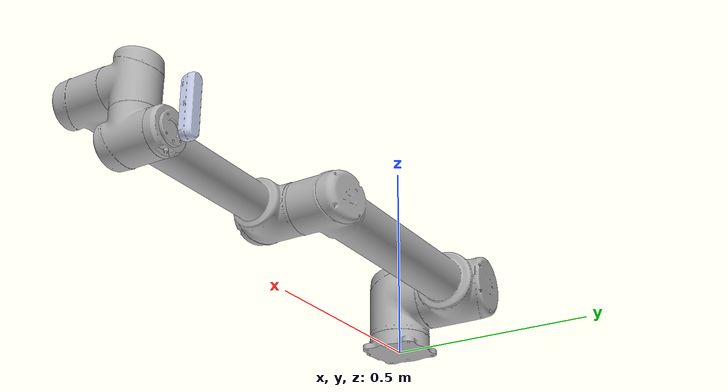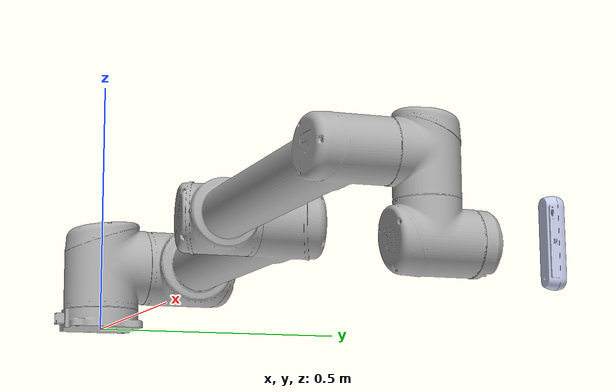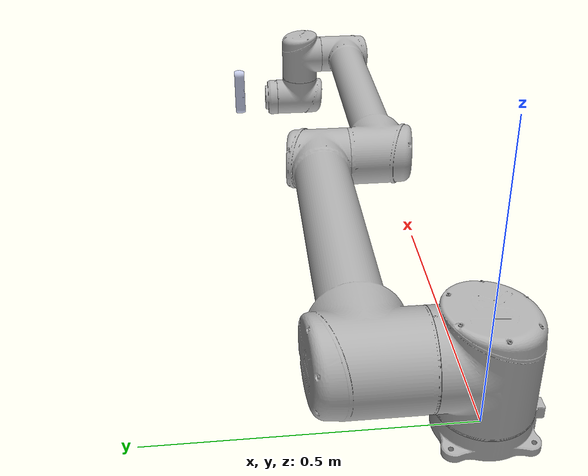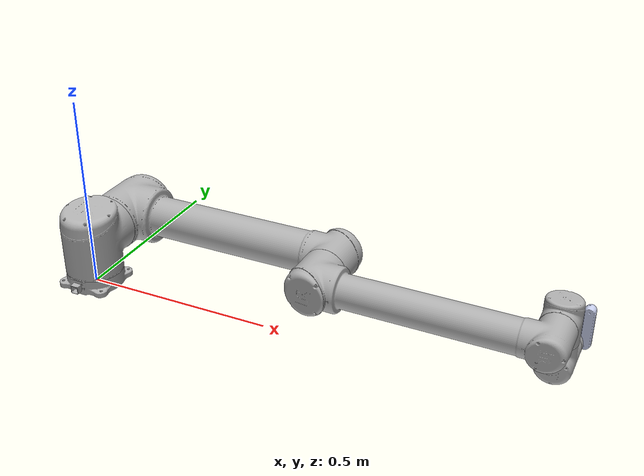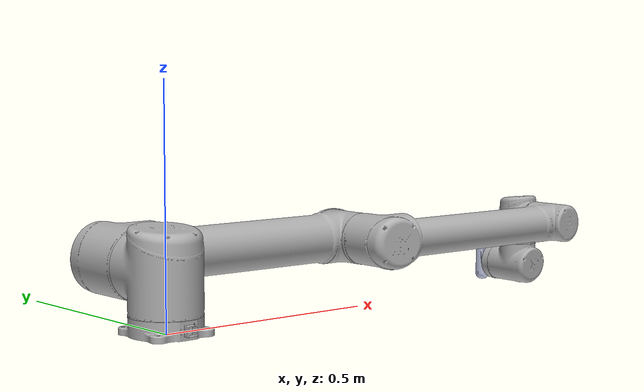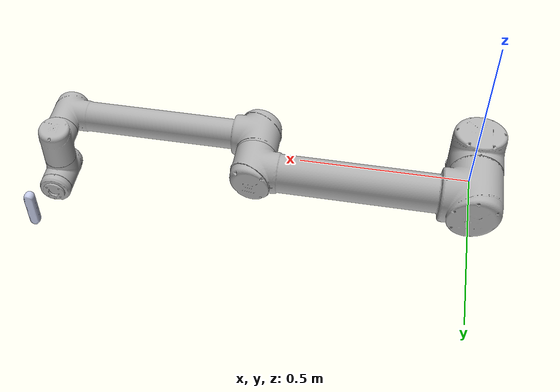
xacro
<?xml version="1.0" ?>
<robot name="ur10_robot">
  <transmission name="shoulder_pan_trans">
    <type>transmission_interface/SimpleTransmission</type>
    <joint name="shoulder_pan_joint">
      <hardwareInterface>hardware_interface/PositionJointInterface</hardwareInterface>
    </joint>
    <actuator name="shoulder_pan_motor">
      <mechanicalReduction>1</mechanicalReduction>
    </actuator>
  </transmission>
  <transmission name="shoulder_lift_trans">
    <type>transmission_interface/SimpleTransmission</type>
    <joint name="shoulder_lift_joint">
      <hardwareInterface>hardware_interface/PositionJointInterface</hardwareInterface>
    </joint>
    <actuator name="shoulder_lift_motor">
      <mechanicalReduction>1</mechanicalReduction>
    </actuator>
  </transmission>
  <transmission name="elbow_trans">
    <type>transmission_interface/SimpleTransmission</type>
    <joint name="elbow_joint">
      <hardwareInterface>hardware_interface/PositionJointInterface</hardwareInterface>
    </joint>
    <actuator name="elbow_motor">
      <mechanicalReduction>1</mechanicalReduction>
    </actuator>
  </transmission>
  <transmission name="wrist_1_trans">
    <type>transmission_interface/SimpleTransmission</type>
    <joint name="wrist_1_joint">
      <hardwareInterface>hardware_interface/PositionJointInterface</hardwareInterface>
    </joint>
    <actuator name="wrist_1_motor">
      <mechanicalReduction>1</mechanicalReduction>
    </actuator>
  </transmission>
  <transmission name="wrist_2_trans">
    <type>transmission_interface/SimpleTransmission</type>
    <joint name="wrist_2_joint">
      <hardwareInterface>hardware_interface/PositionJointInterface</hardwareInterface>
    </joint>
    <actuator name="wrist_2_motor">
      <mechanicalReduction>1</mechanicalReduction>
    </actuator>
  </transmission>
  <transmission name="wrist_3_trans">
    <type>transmission_interface/SimpleTransmission</type>
    <joint name="wrist_3_joint">
      <hardwareInterface>hardware_interface/PositionJointInterface</hardwareInterface>
    </joint>
    <actuator name="wrist_3_motor">
      <mechanicalReduction>1</mechanicalReduction>
    </actuator>
  </transmission>
  <!-- links: main serial chain -->
  <link name="base_link"/>
  <link name="base_link_inertia">
    <visual>
      <origin rpy="0 0 3.141592653589793" xyz="0 0 0"/>
      <geometry>
        <mesh filename="package://ur_description/meshes/ur10/visual/base.dae"/>
      </geometry>
      <material name="LightGrey">
        <color rgba="0.7 0.7 0.7 1.0"/>
      </material>
    </visual>
    <collision>
      <origin rpy="0 0 3.141592653589793" xyz="0 0 0"/>
      <geometry>
        <mesh filename="package://ur_description/meshes/ur10/collision/base.stl"/>
      </geometry>
    </collision>
    <inertial>
      <mass value="4.0"/>
      <origin rpy="0 0 0" xyz="0 0 0"/>
      <inertia ixx="0.0061063308908" ixy="0.0" ixz="0.0" iyy="0.0061063308908" iyz="0.0" izz="0.01125"/>
    </inertial>
  </link>
  <link name="shoulder_link">
    <visual>
      <origin rpy="0 0 3.141592653589793" xyz="0 0 0"/>
      <geometry>
        <mesh filename="package://ur_description/meshes/ur10/visual/shoulder.dae"/>
      </geometry>
      <material name="LightGrey">
        <color rgba="0.7 0.7 0.7 1.0"/>
      </material>
    </visual>
    <collision>
      <origin rpy="0 0 3.141592653589793" xyz="0 0 0"/>
      <geometry>
        <mesh filename="package://ur_description/meshes/ur10/collision/shoulder.stl"/>
      </geometry>
    </collision>
    <inertial>
      <mass value="7.778"/>
      <origin rpy="0 0 0" xyz="0 0 0"/>
      <inertia ixx="0.03147431257693659" ixy="0.0" ixz="0.0" iyy="0.03147431257693659" iyz="0.0" izz="0.021875624999999996"/>
    </inertial>
  </link>
  <link name="upper_arm_link">
    <visual>
      <origin rpy="1.5707963267948966 0 -1.5707963267948966" xyz="0 0 0.220941"/>
      <geometry>
        <mesh filename="package://ur_description/meshes/ur10/visual/upperarm.dae"/>
      </geometry>
      <material name="LightGrey">
        <color rgba="0.7 0.7 0.7 1.0"/>
      </material>
    </visual>
    <collision>
      <origin rpy="1.5707963267948966 0 -1.5707963267948966" xyz="0 0 0.220941"/>
      <geometry>
        <mesh filename="package://ur_description/meshes/ur10/collision/upperarm.stl"/>
      </geometry>
    </collision>
    <inertial>
      <mass value="12.93"/>
      <origin rpy="0 1.5707963267948966 0" xyz="-0.306 0.0 0.175"/>
      <inertia ixx="0.42175380379841093" ixy="0.0" ixz="0.0" iyy="0.42175380379841093" iyz="0.0" izz="0.03636562499999999"/>
    </inertial>
  </link>
  <link name="forearm_link">
    <visual>
      <origin rpy="1.5707963267948966 0 -1.5707963267948966" xyz="0 0 0.049042"/>
      <geometry>
        <mesh filename="package://ur_description/meshes/ur10/visual/forearm.dae"/>
      </geometry>
      <material name="LightGrey">
        <color rgba="0.7 0.7 0.7 1.0"/>
      </material>
    </visual>
    <collision>
      <origin rpy="1.5707963267948966 0 -1.5707963267948966" xyz="0 0 0.049042"/>
      <geometry>
        <mesh filename="package://ur_description/meshes/ur10/collision/forearm.stl"/>
      </geometry>
    </collision>
    <inertial>
      <mass value="3.87"/>
      <origin rpy="0 1.5707963267948966 0" xyz="-0.28615 0.0 0.049042"/>
      <inertia ixx="0.11106969409710458" ixy="0.0" ixz="0.0" iyy="0.11106969409710458" iyz="0.0" izz="0.010884375"/>
    </inertial>
  </link>
  <link name="wrist_1_link">
    <visual>
      <!-- TODO: Move this to a parameter -->
      <origin rpy="1.5707963267948966 0 0" xyz="0 0 -0.1149"/>
      <geometry>
        <mesh filename="package://ur_description/meshes/ur10/visual/wrist1.dae"/>
      </geometry>
      <material name="LightGrey">
        <color rgba="0.7 0.7 0.7 1.0"/>
      </material>
    </visual>
    <collision>
      <origin rpy="1.5707963267948966 0 0" xyz="0 0 -0.1149"/>
      <geometry>
        <mesh filename="package://ur_description/meshes/ur10/collision/wrist1.stl"/>
      </geometry>
    </collision>
    <inertial>
      <mass value="1.96"/>
      <origin rpy="0 0 0" xyz="0 0 0"/>
      <inertia ixx="0.005108247956699999" ixy="0.0" ixz="0.0" iyy="0.005108247956699999" iyz="0.0" izz="0.005512499999999999"/>
    </inertial>
  </link>
  <link name="wrist_2_link">
    <visual>
      <origin rpy="0 0 0" xyz="0 0 -0.1158"/>
      <geometry>
        <mesh filename="package://ur_description/meshes/ur10/visual/wrist2.dae"/>
      </geometry>
      <material name="LightGrey">
        <color rgba="0.7 0.7 0.7 1.0"/>
      </material>
    </visual>
    <collision>
      <origin rpy="0 0 0" xyz="0 0 -0.1158"/>
      <geometry>
        <mesh filename="package://ur_description/meshes/ur10/collision/wrist2.stl"/>
      </geometry>
    </collision>
    <inertial>
      <mass value="1.96"/>
      <origin rpy="0 0 0" xyz="0 0 0"/>
      <inertia ixx="0.0040792483683" ixy="0.0" ixz="0.0" iyy="0.0040792483683" iyz="0.0" izz="0.005512499999999999"/>
    </inertial>
  </link>
  <link name="wrist_3_link">
    <visual>
      <origin rpy="1.5707963267948966 0 0" xyz="0 0 -0.0922"/>
      <geometry>
        <mesh filename="package://ur_description/meshes/ur10/visual/wrist3.dae"/>
      </geometry>
      <material name="LightGrey">
        <color rgba="0.7 0.7 0.7 1.0"/>
      </material>
    </visual>
    <collision>
      <origin rpy="1.5707963267948966 0 0" xyz="0 0 -0.0922"/>
      <geometry>
        <mesh filename="package://ur_description/meshes/ur10/collision/wrist3.stl"/>
      </geometry>
    </collision>
    <inertial>
      <mass value="0.202"/>
      <origin rpy="0 0 0" xyz="0.0 0.0 -0.01525"/>
      <inertia ixx="0.00011792166116465" ixy="0.0" ixz="0.0" iyy="0.00011792166116465" iyz="0.0" izz="0.00020452500000000002"/>
    </inertial>
  </link>
  <!-- joints: main serial chain -->
  <joint name="base_link-base_link_inertia" type="fixed">
    <parent link="base_link"/>
    <child link="base_link_inertia"/>
    <origin rpy="0 0 3.141592653589793" xyz="0 0 0"/>
  </joint>
  <joint name="shoulder_pan_joint" type="revolute">
    <parent link="base_link_inertia"/>
    <child link="shoulder_link"/>
    <origin rpy="0 0 0" xyz="0 0 0.1273"/>
    <axis xyz="0 0 1"/>
    <limit effort="330.0" lower="-6.283185307179586" upper="6.283185307179586" velocity="2.0943951023931953"/>
    <dynamics damping="0" friction="0"/>
  </joint>
  <joint name="shoulder_lift_joint" type="revolute">
    <parent link="shoulder_link"/>
    <child link="upper_arm_link"/>
    <origin rpy="1.570796327 0 0" xyz="0 0 0"/>
    <axis xyz="0 0 1"/>
    <limit effort="330.0" lower="-6.283185307179586" upper="6.283185307179586" velocity="2.0943951023931953"/>
    <dynamics damping="0" friction="0"/>
  </joint>
  <joint name="elbow_joint" type="revolute">
    <parent link="upper_arm_link"/>
    <child link="forearm_link"/>
    <origin rpy="0 0 0" xyz="-0.612 0 0"/>
    <axis xyz="0 0 1"/>
    <limit effort="150.0" lower="-3.141592653589793" upper="3.141592653589793" velocity="3.141592653589793"/>
    <dynamics damping="0" friction="0"/>
  </joint>
  <joint name="wrist_1_joint" type="revolute">
    <parent link="forearm_link"/>
    <child link="wrist_1_link"/>
    <origin rpy="0 0 0" xyz="-0.5723 0 0.163941"/>
    <axis xyz="0 0 1"/>
    <limit effort="56.0" lower="-6.283185307179586" upper="6.283185307179586" velocity="3.141592653589793"/>
    <dynamics damping="0" friction="0"/>
  </joint>
  <joint name="wrist_2_joint" type="revolute">
    <parent link="wrist_1_link"/>
    <child link="wrist_2_link"/>
    <origin rpy="1.570796327 0 0" xyz="0 -0.1157 -2.373046667922381e-11"/>
    <axis xyz="0 0 1"/>
    <limit effort="56.0" lower="-6.283185307179586" upper="6.283185307179586" velocity="3.141592653589793"/>
    <dynamics damping="0" friction="0"/>
  </joint>
  <joint name="wrist_3_joint" type="revolute">
    <parent link="wrist_2_link"/>
    <child link="wrist_3_link"/>
    <origin rpy="1.570796326589793 3.141592653589793 3.141592653589793" xyz="0 0.0922 -1.891053610911353e-11"/>
    <axis xyz="0 0 1"/>
    <limit effort="56.0" lower="-6.283185307179586" upper="6.283185307179586" velocity="3.141592653589793"/>
    <dynamics damping="0" friction="0"/>
  </joint>
  <!-- ROS-Industrial 'base' frame: base_link to UR 'Base' Coordinates transform -->
  <link name="base"/>
  <joint name="base_link-base_fixed_joint" type="fixed">
    <origin rpy="0 0 3.141592653589793" xyz="0 0 0"/>
    <parent link="base_link"/>
    <child link="base"/>
  </joint>
  <!-- ROS-Industrial 'flange' frame: attachment point for EEF models -->
  <link name="flange"/>
  <joint name="wrist_3-flange" type="fixed">
    <parent link="wrist_3_link"/>
    <child link="flange"/>
    <origin rpy="0 -1.5707963267948966 -1.5707963267948966" xyz="0 0 0"/>
  </joint>
  <!-- ROS-Industrial 'tool0' frame: all-zeros tool frame -->
  <link name="tool0"/>
  <joint name="flange-tool0" type="fixed">
    <!-- default toolframe: X+ left, Y+ up, Z+ front -->
    <origin rpy="1.5707963267948966 0 1.5707963267948966" xyz="0 0 0"/>
    <parent link="flange"/>
    <child link="tool0"/>
  </joint>

  <joint name="kinect_joint" type="fixed">
    <origin rpy="0.0 0.0 -1.5708" xyz="-0.04 0 0.08"/>
    <parent link="wrist_3_link"/>
    <child link="kinect_link"/>
  </joint>
  <link name="kinect_link">
    <visual>
      <origin rpy="0.0 0.0 0.0" xyz="0.0 0.0 0.0"/>
      <geometry>
         <mesh filename="package://ur_description/meshes/ur10/visual/d455.dae" scale="0.001 0.001 0.001"/>
      </geometry>
    </visual>
    <collision>
      <geometry>
        <box size="0.0001 0.0001 0.0001"/>
      </geometry>
    </collision>
  </link>
  <!--相机-->
  <gazebo reference="kinect_link">
    <sensor name="kinect" type="depth">
      <always_on>true</always_on>
      <update_rate>30.0</update_rate>
      <pose>-0.04 0 0.08 0 -1.5708 0</pose>
      <camera name="kinect">
        <horizontal_fov>1.0471975333333332</horizontal_fov>
        <image>
          <format>R8G8B8</format>
          <width>640</width>
          <height>480</height>
        </image>
        <clip>
          <near>0.01</near>
          <far>8.0</far>
        </clip>
      </camera>
      <plugin filename="libgazebo_ros_camera.so" name="kinect_controller">
        <ros>
          <remapping>kinect/image_raw:=rgb/image_raw</remapping>
          <remapping>kinect/depth/image_raw:=depth/image_raw</remapping>
          <remapping>kinect/camera_info:=rgb/camera_info</remapping>
          <remapping>kinect/depth/camera_info:=depth/camera_info</remapping>
          <remapping>kinect/points:=depth/points</remapping>
        </ros>
        <camera_name>kinect</camera_name>
        <frame_name>kinect_link</frame_name>
        <hack_baseline>0.07</hack_baseline>
        <min_depth>0.01</min_depth>
        <max_depth>300.0</max_depth>
      </plugin>
    </sensor>
  </gazebo>

</robot>
